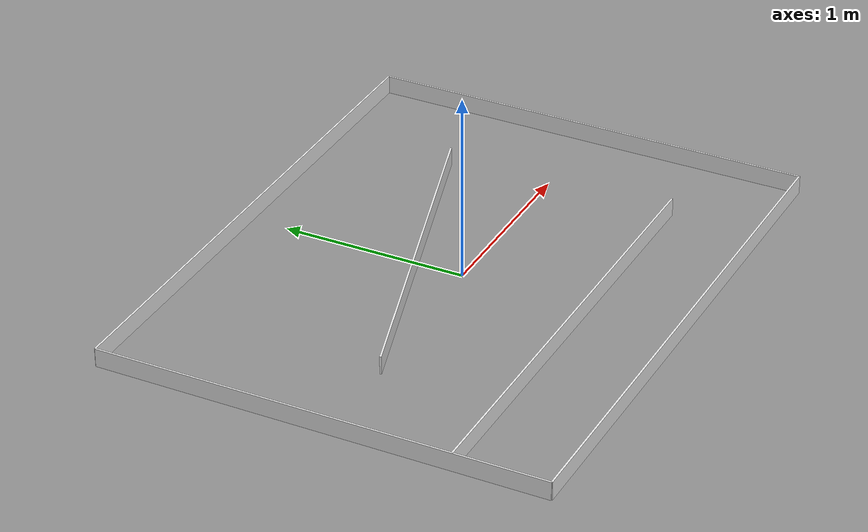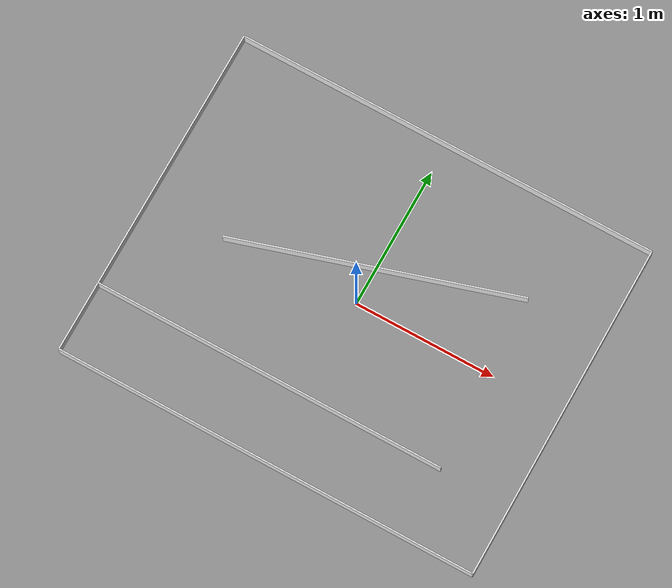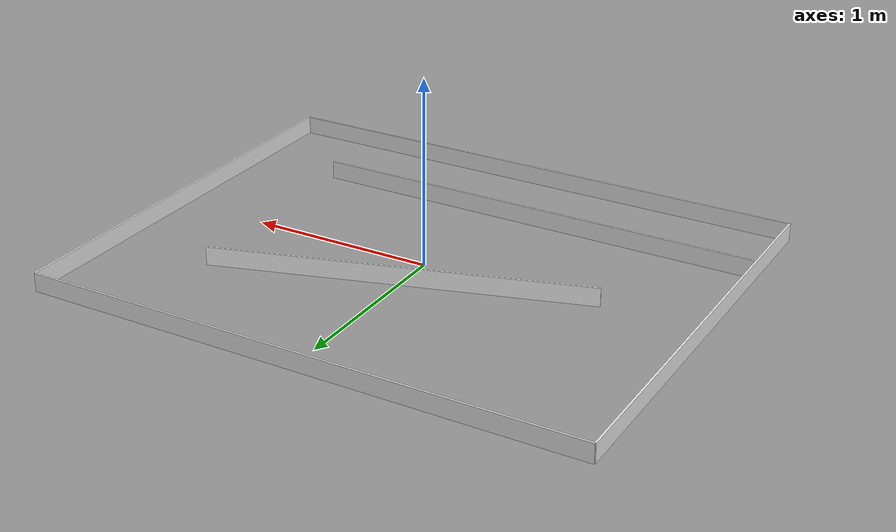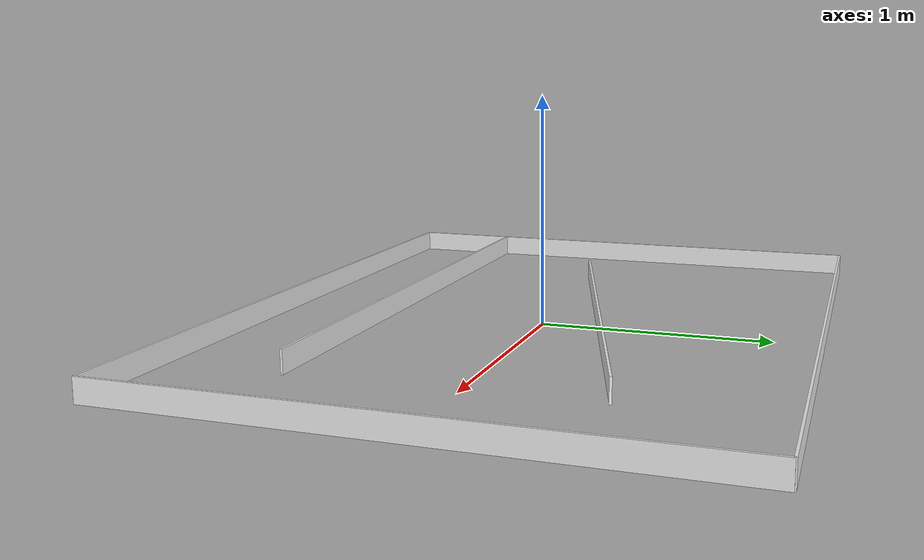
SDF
<?xml version="1.0" ?>
<sdf version="1.5">
  <model name="walls">
    <static>true</static>
    <link name="bottom">
      <pose>0 -1.2 0.05 0 0 0</pose>
      <collision name="collision">
        <geometry>
          <box>
            <size>3 0.01 0.1</size>
          </box>
        </geometry>
        <surface>
          <friction>
            <ode>
              <mu>100</mu>
              <mu2>50</mu2>
            </ode>
          </friction>
        </surface>
      </collision>
      <visual name="visual">
        <cast_shadows>false</cast_shadows>
        <geometry>
          <box>
            <size>3 0.01 0.1</size>
          </box>
        </geometry>
        <material>
          <script>
            <uri>file://media/materials/scripts/gazebo.material</uri>
            <name>Gazebo/White</name>
          </script>
        </material>
      </visual>
    </link>
    <link name="top">
      <pose>0 1.2 0.05 0 0 0</pose>
      <collision name="collision">
        <geometry>
          <box>
            <size>3 0.01 0.1</size>
          </box>
        </geometry>
        <surface>
          <friction>
            <ode>
              <mu>100</mu>
              <mu2>50</mu2>
            </ode>
          </friction>
        </surface>
      </collision>
      <visual name="visual">
        <cast_shadows>false</cast_shadows>
        <geometry>
          <box>
            <size>3 0.01 0.1</size>
          </box>
        </geometry>
        <material>
          <script>
            <uri>file://media/materials/scripts/gazebo.material</uri>
            <name>Gazebo/White</name>
          </script>
        </material>
      </visual>
    </link>
    <link name="left">
      <pose>-1.5 0 0.05 0 0 0</pose>
      <collision name="collision">
        <geometry>
          <box>
            <size>0.01 2.4 0.1</size>
          </box>
        </geometry>
        <surface>
          <friction>
            <ode>
              <mu>100</mu>
              <mu2>50</mu2>
            </ode>
          </friction>
        </surface>
      </collision>
      <visual name="visual">
        <cast_shadows>false</cast_shadows>
        <geometry>
          <box>
            <size>0.01 2.4 0.1</size>
          </box>
        </geometry>
        <material>
          <script>
            <uri>file://media/materials/scripts/gazebo.material</uri>
            <name>Gazebo/White</name>
          </script>
        </material>
      </visual>
    </link>
    <link name="right">
      <pose>1.5 0 0.05 0 0 0</pose>
      <collision name="collision">
        <geometry>
          <box>
            <size>0.01 2.4 0.1</size>
          </box>
        </geometry>
        <surface>
          <friction>
            <ode>
              <mu>100</mu>
              <mu2>50</mu2>
            </ode>
          </friction>
        </surface>
      </collision>
      <visual name="visual">
        <cast_shadows>false</cast_shadows>
        <geometry>
          <box>
            <size>0.01 2.4 0.1</size>
          </box>
        </geometry>
        <material>
          <script>
            <uri>file://media/materials/scripts/gazebo.material</uri>
            <name>Gazebo/White</name>
          </script>
        </material>
      </visual>
    </link>

    <link name="inner_bottom">
      <pose>-0.25 -0.7 0.05 0 0 0.0</pose>
      <collision name="collision">
        <geometry>
          <box>
            <size>2.5 0.01 0.1</size>
          </box>
        </geometry>
        <surface>
          <friction>
            <ode>
              <mu>100</mu>
              <mu2>50</mu2>
            </ode>
          </friction>
        </surface>
      </collision>
      <visual name="visual">
        <cast_shadows>false</cast_shadows>
        <geometry>
          <box>
            <size>2.5 0.01 0.1</size>
          </box>
        </geometry>
        <material>
          <script>
            <uri>file://media/materials/scripts/gazebo.material</uri>
            <name>Gazebo/White</name>
          </script>
        </material>
      </visual>
    </link>
    <link name="inner_top">
      <pose>0 0.25 0.05 0 0 0.3</pose>
      <collision name="collision">
        <geometry>
          <box>
            <size>2.0 0.01 0.1</size>
          </box>
        </geometry>
        <surface>
          <friction>
            <ode>
              <mu>100</mu>
              <mu2>50</mu2>
            </ode>
          </friction>
        </surface>
      </collision>
      <visual name="visual">
        <cast_shadows>false</cast_shadows>
        <geometry>
          <box>
            <size>2 0.01 0.1</size>
          </box>
        </geometry>
        <material>
          <script>
            <uri>file://media/materials/scripts/gazebo.material</uri>
            <name>Gazebo/White</name>
          </script>
        </material>
      </visual>
    </link>
    <link name="inner_left">
      <pose>-1.5 0 0.05 0 0 0</pose>
      <collision name="collision">
        <geometry>
          <box>
            <size>0.01 2.4 0.1</size>
          </box>
        </geometry>
        <surface>
          <friction>
            <ode>
              <mu>100</mu>
              <mu2>50</mu2>
            </ode>
          </friction>
        </surface>
      </collision>
      <visual name="visual">
        <cast_shadows>false</cast_shadows>
        <geometry>
          <box>
            <size>0.01 2.4 0.1</size>
          </box>
        </geometry>
        <material>
          <script>
            <uri>file://media/materials/scripts/gazebo.material</uri>
            <name>Gazebo/White</name>
          </script>
        </material>
      </visual>
    </link>
    <link name="inner_right">
      <pose>1.5 0 0.05 0 0 0</pose>
      <collision name="collision">
        <geometry>
          <box>
            <size>0.01 2.4 0.1</size>
          </box>
        </geometry>
        <surface>
          <friction>
            <ode>
              <mu>100</mu>
              <mu2>50</mu2>
            </ode>
          </friction>
        </surface>
      </collision>
      <visual name="visual">
        <cast_shadows>false</cast_shadows>
        <geometry>
          <box>
            <size>0.01 2.4 0.1</size>
          </box>
        </geometry>
        <material>
          <script>
            <uri>file://media/materials/scripts/gazebo.material</uri>
            <name>Gazebo/White</name>
          </script>
        </material>
      </visual>
    </link>

  </model>
</sdf>
